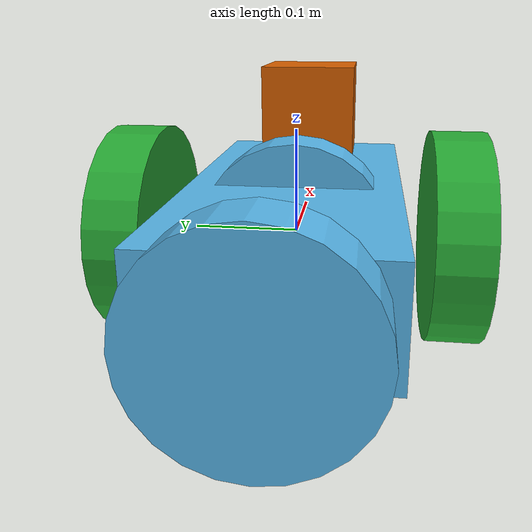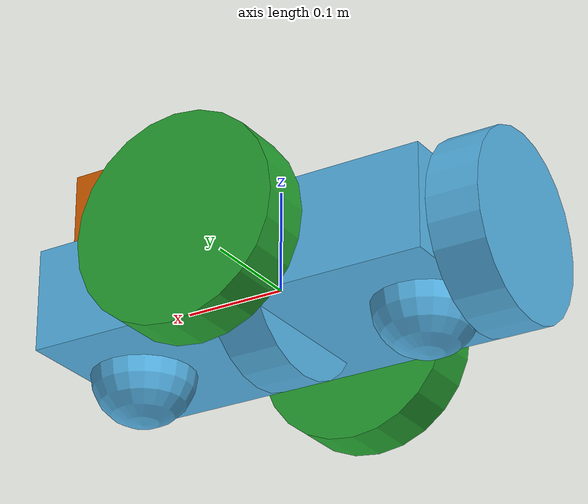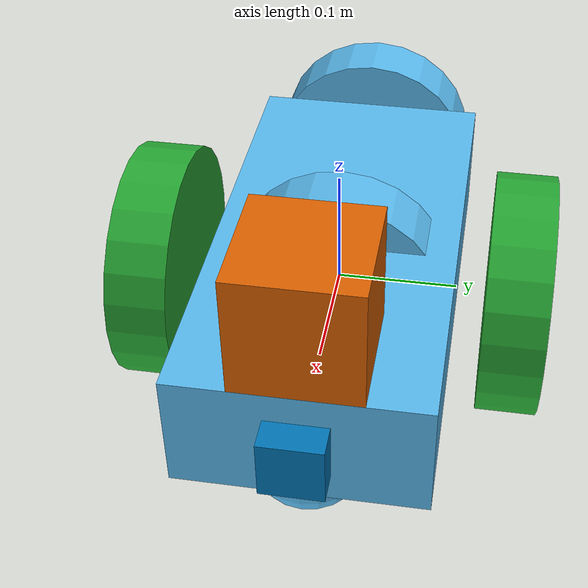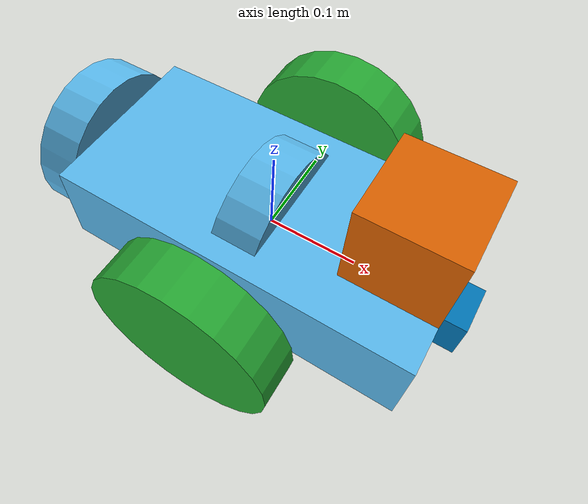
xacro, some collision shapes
<robot name="my_robot" xmlns:xacro="http://www.ros.org/wiki/xacro">
	<xacro:include filename="$(find my_robot)/urdf/my_robot.gazebo" />
  <link name="robot_footprint"></link>

  <joint name="robot_footprint_joint" type="fixed">
    <origin xyz="0 0 0" rpy="0 0 0" />
    <parent link="robot_footprint"/>
    <child link="chassis" />
  </joint>

  <link name='chassis'>
    <pose>0 0 0.1 0 0 0</pose>

    <inertial>
      <mass value="15.0"/>
      <origin xyz="0.0 0 0" rpy=" 0 0 0"/>
      <inertia
          ixx="0.1" ixy="0" ixz="0"
          iyy="0.1" iyz="0"
          izz="0.1"
      />
    </inertial>

    <collision name='collision'>
      <origin xyz="0 0 0" rpy=" 0 0 0"/>
      <geometry>
        <box size=".4 .2 .1"/>
      </geometry>
    </collision>

    <visual name='chassis_visual'>
      <origin xyz="0 0 0" rpy=" 0 0 0"/>
      <geometry>
        <box size=".4 .2 .1"/>
      </geometry>
    </visual>

	<visual name='spare_visual'>
		<origin xyz="0 0 0" rpy=" 1.5707 0 1.5707"/>
		<geometry>
			<cylinder radius="0.09" length="0.05"/>
		</geometry>
		<mass>5</mass>
	</visual>

	<collision name='spare_collision'>
		<origin xyz="0 0 0" rpy=" 1.5707 0 1.5707"/>
		<geometry>
			<cylinder radius="0.09" length="0.05"/>
		</geometry>
		<mass>5</mass>
	</collision>

	<visual name='spare2_visual'>
		<origin xyz="-0.225 0 0" rpy=" 1.5707 0 1.5707"/>
		<geometry>
			<cylinder radius="0.09" length="0.05"/>
		</geometry>
		<mass>5</mass>
	</visual>

	<collision name='spare2_collision'>
		<origin xyz="-0.225 0 0" rpy=" 1.5707 0 1.5707"/>
		<geometry>
			<cylinder radius="0.09" length="0.05"/>
		</geometry>
		<mass>5</mass>
	</collision>

    <collision name='back_caster_collision'>
      <origin xyz="-0.15 0 -0.05" rpy=" 0 0 0"/>
      <geometry>
        <sphere radius="0.0499"/>
      </geometry>
    </collision>

    <visual name='back_caster_visual'>
      <origin xyz="-0.15 0 -0.05" rpy=" 0 0 0"/>
      <geometry>
        <sphere radius="0.05"/>
      </geometry>
    </visual>

    <collision name='front_caster_collision'>
      <origin xyz="0.15 0 -0.05" rpy=" 0 0 0"/>
      <geometry>
        <sphere radius="0.0499"/>
      </geometry>
    </collision>

    <visual name='front_caster_visual'>
      <origin xyz="0.15 0 -0.05" rpy=" 0 0 0"/>
      <geometry>
        <sphere radius="0.05"/>
      </geometry>
    </visual>

  </link>

  <link name='left_wheel'>

	<inertial>
      <mass value="5.0"/>
      <origin xyz="0.0 0 0" rpy=" 0 1.5707 1.5707"/>
      <inertia
          ixx="0.1" ixy="0" ixz="0"
          iyy="0.1" iyz="0"
          izz="0.1"
      />
    </inertial>

	<visual name='left_wheel_visual'>
		<origin xyz="0 0 0" rpy=" 0 1.5707 1.5707"/>
		<geometry>
			<cylinder radius="0.1" length="0.05"/>
		</geometry>
		<mass>5</mass>
	</visual>

	<collision name='left_wheel_collision'>
		<origin xyz="0 0 0" rpy=" 0 1.5707 1.5707"/>
		<geometry>
			<cylinder radius="0.1" length="0.05"/>
		</geometry>
		<mass>5</mass>
	</collision>
	</link>

<link name='right_wheel'>

	<inertial>
      <mass value="5.0"/>
      <origin xyz="0.0 0 0" rpy=" 0 1.5707 1.5707"/>
      <inertia
          ixx="0.1" ixy="0" ixz="0"
          iyy="0.1" iyz="0"
          izz="0.1"
      />
    </inertial>

	<visual name='right_wheel_visual'>
		<origin xyz="0 0 0" rpy=" 0 1.5707 1.5707"/>
		<geometry>
			<cylinder radius="0.1" length="0.05"/>
		</geometry>
		<mass>5</mass>
	</visual>

	<collision name='right_wheel_collision'>
		<origin xyz="0 0 0" rpy=" 0 1.5707 1.5707"/>
		<geometry>
			<cylinder radius="0.1" length="0.05"/>
		</geometry>
		<mass>5</mass>
	</collision>
	</link>

<joint type="continuous" name="left_wheel_hinge">
    <origin xyz="0 0.15 0" rpy="0 0 0"/>
    <child link="left_wheel"/>
    <parent link="chassis"/>
    <axis xyz="0 1 0" rpy="0 0 0"/>
    <limit effort="10000" velocity="1000"/>
    <dynamics damping="1.0" friction="1.0"/>
  </joint>

<joint type="continuous" name="right_wheel_hinge">
    <origin xyz="0 -0.15 0" rpy="0 0 0"/>
    <child link="right_wheel"/>
    <parent link="chassis"/>
    <axis xyz="0 1 0" rpy="0 0 0"/>
    <limit effort="10000" velocity="1000"/>
    <dynamics damping="1.0" friction="1.0"/>
  </joint>

<link name='camera'>

	<inertial>
      <mass value="0.1"/>
      <origin xyz="0 0 0" rpy=" 0 0 0"/>
      <inertia
          ixx="0.000001" ixy="0" ixz="0"
          iyy="0.000001" iyz="0"
          izz="0.000001"
      />
	  <box_inertia m="0.1" x="0.05" y="0.05" z="0.05" />
    </inertial>

	<visual name='camera_visual'>
		<origin xyz="0 0 0" rpy=" 0 0 0"/>
		<geometry>
			<box size=".05 .05 .05"/>
		</geometry>
		<mass>0.1</mass>
	</visual>

	<collision name='camera_collision'>
		<origin xyz="0 0 0" rpy=" 0 0 0"/>
		<geometry>
			<box size=".05 .05 .05"/>
		</geometry>
		<mass>0.1</mass>
	</collision>
	</link>

<joint type="fixed" name="camera_joint">
    <origin xyz="0.2 0 0" rpy="0 0 0"/>
    <child link="camera"/>
    <parent link="chassis"/>
    <axis xyz="0 1 0"/>
  </joint>

<link name='hokuyo'>

	<inertial>
      <mass value="0.00001"/>
      <origin xyz="0 0 0" rpy=" 0 0 0"/>
      <inertia
          ixx="0.000001" ixy="0" ixz="0"
          iyy="0.000001" iyz="0"
          izz="0.000001"
      />
    </inertial>

	<visual name='hokuyo_visual'>
		<origin xyz="0 0 0" rpy=" 0 0 0"/>
		<geometry>
			<mesh filename = "package://my_robot/meshes/hokuyo.dae"/>
		</geometry>
		<mass>0.00001</mass>
	</visual>

	<collision name='hokuyo_collision'>
		<origin xyz="0 0 0" rpy=" 0 0 0"/>
		<geometry>
			<box size=".1 .1 .1"/>
		</geometry>
		<mass>0.00001</mass>
	</collision>
	</link>

<joint type="fixed" name="hokuyo_joint">
    <origin xyz="0.15 0 0.1" rpy="0 0 0"/>
    <child link="hokuyo"/>
    <parent link="chassis"/>
    <axis xyz="0 1 0"/>
  </joint>

  <gazebo reference="left_wheel">
    <material>Gazebo/Green</material>
</gazebo>

	<gazebo reference="right_wheel">
    <material>Gazebo/Green</material>
</gazebo>

</robot>
